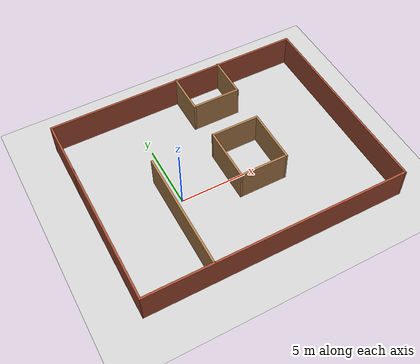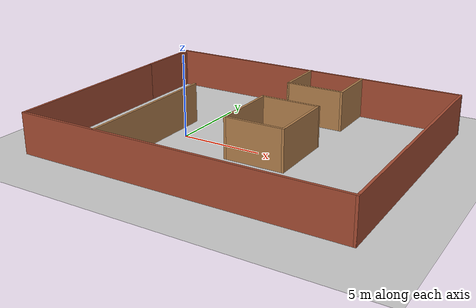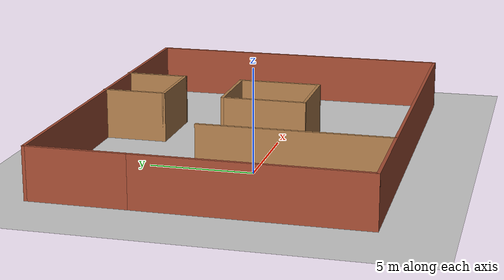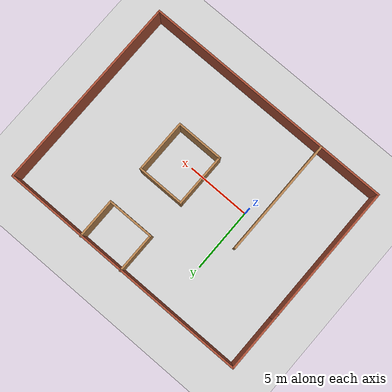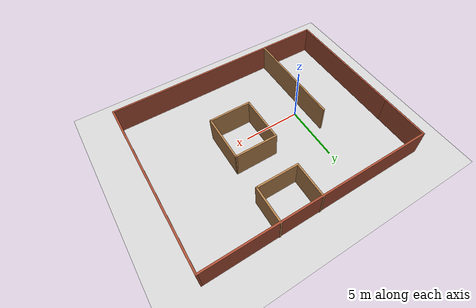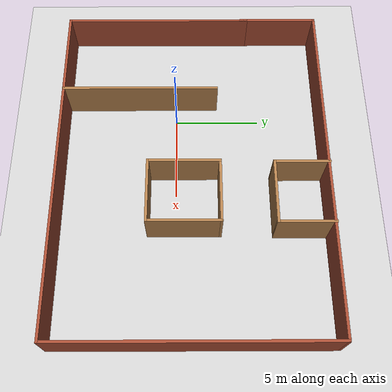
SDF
<sdf version="1.7">
 <world name="default">
  <plugin name="gazebo_ros_state" filename="libgazebo_ros_state.so">
   <ros><namespace>/gazebo</namespace></ros>
   <update_rate>1.0</update_rate>
  </plugin>
  <light name="sun" type="directional">
   <pose>0 0 10 0 -0 0</pose>
   <diffuse>0.8 0.8 0.8 1</diffuse>
   <specular>0.2 0.2 0.2 1</specular>
   <attenuation>
    <range>1000</range>
    <constant>0.9</constant>
    <linear>0.01</linear>
    <quadratic>0.001</quadratic>
   </attenuation>
   <direction>-0.5 0.1 -0.9</direction>
   <spot><inner_angle>0</inner_angle><outer_angle>0</outer_angle><falloff>0</falloff></spot>
  </light>
  <model name="ground_plane">
   <static>1</static>
   <link name="link">
    <collision name="collision">
     <geometry><plane><normal>0 0 1</normal><size>100 100</size></plane></geometry>
     <surface>
      <contact><collide_bitmask>65535</collide_bitmask></contact>
      <friction><ode><mu>100</mu><mu2>50</mu2></ode></friction>
     </surface>
    </collision>
    <visual name="visual">
     <cast_shadows>0</cast_shadows>
     <geometry><plane><normal>0 0 1</normal><size>100 100</size></plane></geometry>
     <material>
      <script><uri>file://media/materials/scripts/gazebo.material</uri><name>Gazebo/Grey</name></script>
     </material>
    </visual>
   </link>
  </model>
  <gravity>0 0 -9.8</gravity>
  <magnetic_field>6e-06 2.3e-05 -4.2e-05</magnetic_field>
  <atmosphere type="adiabatic"/>
  <physics type="ode">
   <max_step_size>0.001</max_step_size>
   <real_time_factor>1</real_time_factor>
   <real_time_update_rate>1000</real_time_update_rate>
  </physics>
  <scene><ambient>0.4 0.4 0.4 1</ambient><background>0.7 0.7 0.7 1</background><shadows>1</shadows></scene>
  <audio><device>default</device></audio>
  <spherical_coordinates>
   <surface_model>EARTH_WGS84</surface_model>
   <latitude_deg>0</latitude_deg>
   <longitude_deg>0</longitude_deg>
   <elevation>0</elevation>
   <heading_deg>0</heading_deg>
  </spherical_coordinates>
  <model name="Social">
   <pose>3.85337 0.98707 0 0 -0 0</pose>
   <link name="Wall_16">
    <collision name="Wall_16_Collision">
     <geometry><box><size>11.25 0.15 2.5</size></box></geometry>
     <pose>0 0 1.25 0 -0 0</pose>
    </collision>
    <visual name="Wall_16_Visual">
     <pose>0 0 1.25 0 -0 0</pose>
     <geometry><box><size>11.25 0.15 2.5</size></box></geometry>
     <material>
      <script><uri>file://media/materials/scripts/gazebo.material</uri><name>Gazebo/Bricks</name></script>
      <ambient>1 1 1 1</ambient>
     </material>
     <meta><layer>0</layer></meta>
    </visual>
    <pose>-9.925 -2.14616 0 0 -0 -1.5708</pose>
   </link>
   <link name="Wall_17">
    <collision name="Wall_17_Collision">
     <geometry><box><size>20 0.15 2.5</size></box></geometry>
     <pose>0 0 1.25 0 -0 0</pose>
    </collision>
    <visual name="Wall_17_Visual">
     <pose>0 0 1.25 0 -0 0</pose>
     <geometry><box><size>20 0.15 2.5</size></box></geometry>
     <material>
      <script><uri>file://media/materials/scripts/gazebo.material</uri><name>Gazebo/Bricks</name></script>
      <ambient>1 1 1 1</ambient>
     </material>
     <meta><layer>0</layer></meta>
    </visual>
    <pose>-0 -7.69616 0 0 -0 0</pose>
   </link>
   <link name="Wall_18">
    <collision name="Wall_18_Collision">
     <geometry><box><size>15.5 0.15 2.5</size></box></geometry>
     <pose>0 0 1.25 0 -0 0</pose>
    </collision>
    <visual name="Wall_18_Visual">
     <pose>0 0 1.25 0 -0 0</pose>
     <geometry><box><size>15.5 0.15 2.5</size></box></geometry>
     <material>
      <script><uri>file://media/materials/scripts/gazebo.material</uri><name>Gazebo/Bricks</name></script>
      <ambient>1 1 1 1</ambient>
     </material>
     <meta><layer>0</layer></meta>
    </visual>
    <pose>9.925 -0.021162 0 0 -0 1.5708</pose>
   </link>
   <link name="Wall_19">
    <collision name="Wall_19_Collision">
     <geometry><box><size>20 0.15 2.5</size></box></geometry>
     <pose>0 0 1.25 0 -0 0</pose>
    </collision>
    <visual name="Wall_19_Visual">
     <pose>0 0 1.25 0 -0 0</pose>
     <geometry><box><size>20 0.15 2.5</size></box></geometry>
     <material>
      <script><uri>file://media/materials/scripts/gazebo.material</uri><name>Gazebo/Bricks</name></script>
      <ambient>1 1 1 1</ambient>
     </material>
     <meta><layer>0</layer></meta>
    </visual>
    <pose>-0 7.65384 0 0 -0 3.14159</pose>
   </link>
   <link name="Wall_20">
    <collision name="Wall_20_Collision">
     <geometry><box><size>4.75 0.15 2.5</size></box></geometry>
     <pose>0 0 1.25 0 -0 0</pose>
    </collision>
    <visual name="Wall_20_Visual">
     <pose>0 0 1.25 0 -0 0</pose>
     <geometry><box><size>4.75 0.15 2.5</size></box></geometry>
     <material>
      <script><uri>file://media/materials/scripts/gazebo.material</uri><name>Gazebo/Bricks</name></script>
      <ambient>1 1 1 1</ambient>
     </material>
     <meta><layer>0</layer></meta>
    </visual>
    <pose>-9.925 5.35384 0 0 -0 -1.5708</pose>
   </link>
   <link name="Wall_22">
    <collision name="Wall_22_Collision">
     <geometry><box><size>9.25 0.15 2.5</size></box></geometry>
     <pose>0 0 1.25 0 -0 0</pose>
    </collision>
    <visual name="Wall_22_Visual">
     <pose>0 0 1.25 0 -0 0</pose>
     <geometry><box><size>9.25 0.15 2.5</size></box></geometry>
     <material>
      <script><uri>file://media/materials/scripts/gazebo.material</uri><name>Gazebo/Wood</name></script>
      <ambient>1 1 1 1</ambient>
     </material>
     <meta><layer>0</layer></meta>
    </visual>
    <pose>-4.85389 -3.11885 0 0 -0 1.5708</pose>
   </link>
   <link name="Wall_28">
    <collision name="Wall_28_Collision">
     <geometry><box><size>3.25 0.15 2.5</size></box></geometry>
     <pose>0 0 1.25 0 -0 0</pose>
    </collision>
    <visual name="Wall_28_Visual">
     <pose>0 0 1.25 0 -0 0</pose>
     <geometry><box><size>3.25 0.15 2.5</size></box></geometry>
     <material>
      <script><uri>file://media/materials/scripts/gazebo.material</uri><name>Gazebo/Wood</name></script>
      <ambient>1 1 1 1</ambient>
     </material>
     <meta><layer>0</layer></meta>
    </visual>
    <pose>0.064983 6.14616 0 0 -0 -1.5708</pose>
   </link>
   <link name="Wall_29">
    <collision name="Wall_29_Collision">
     <geometry><box><size>3.75 0.15 2.5</size></box></geometry>
     <pose>0 0 1.25 0 -0 0</pose>
    </collision>
    <visual name="Wall_29_Visual">
     <pose>0 0 1.25 0 -0 0</pose>
     <geometry><box><size>3.75 0.15 2.5</size></box></geometry>
     <material>
      <script><uri>file://media/materials/scripts/gazebo.material</uri><name>Gazebo/Wood</name></script>
      <ambient>1 1 1 1</ambient>
     </material>
     <meta><layer>0</layer></meta>
    </visual>
    <pose>1.86498 4.59616 0 0 -0 0</pose>
   </link>
   <link name="Wall_30">
    <collision name="Wall_30_Collision">
     <geometry><box><size>3.25 0.15 2.5</size></box></geometry>
     <pose>0 0 1.25 0 -0 0</pose>
    </collision>
    <visual name="Wall_30_Visual">
     <pose>0 0 1.25 0 -0 0</pose>
     <geometry><box><size>3.25 0.15 2.5</size></box></geometry>
     <material>
      <script><uri>file://media/materials/scripts/gazebo.material</uri><name>Gazebo/Wood</name></script>
      <ambient>1 1 1 1</ambient>
     </material>
     <meta><layer>0</layer></meta>
    </visual>
    <pose>3.66498 6.14616 0 0 -0 1.5708</pose>
   </link>
   <link name="Wall_32">
    <collision name="Wall_32_Collision">
     <geometry><box><size>4.25 0.15 2.5</size></box></geometry>
     <pose>0 0 1.25 0 -0 0</pose>
    </collision>
    <visual name="Wall_32_Visual">
     <pose>0 0 1.25 0 -0 0</pose>
     <geometry><box><size>4.25 0.15 2.5</size></box></geometry>
     <material>
      <script><uri>file://media/materials/scripts/gazebo.material</uri><name>Gazebo/Wood</name></script>
      <ambient>1 1 1 1</ambient>
     </material>
     <meta><layer>0</layer></meta>
    </visual>
    <pose>-0.015928 -0.503085 0 0 -0 -1.5708</pose>
   </link>
   <link name="Wall_35">
    <collision name="Wall_35_Collision">
     <geometry><box><size>3.75 0.15 2.5</size></box></geometry>
     <pose>0 0 1.25 0 -0 0</pose>
    </collision>
    <visual name="Wall_35_Visual">
     <pose>0 0 1.25 0 -0 0</pose>
     <geometry><box><size>3.75 0.15 2.5</size></box></geometry>
     <material>
      <script><uri>file://media/materials/scripts/gazebo.material</uri><name>Gazebo/Wood</name></script>
      <ambient>1 1 1 1</ambient>
     </material>
     <meta><layer>0</layer></meta>
    </visual>
    <pose>1.78407 -2.55308 0 0 -0 0</pose>
   </link>
   <link name="Wall_36">
    <collision name="Wall_36_Collision">
     <geometry><box><size>4.25 0.15 2.5</size></box></geometry>
     <pose>0 0 1.25 0 -0 0</pose>
    </collision>
    <visual name="Wall_36_Visual">
     <pose>0 0 1.25 0 -0 0</pose>
     <geometry><box><size>4.25 0.15 2.5</size></box></geometry>
     <material>
      <script><uri>file://media/materials/scripts/gazebo.material</uri><name>Gazebo/Wood</name></script>
      <ambient>1 1 1 1</ambient>
     </material>
     <meta><layer>0</layer></meta>
    </visual>
    <pose>3.58407 -0.503085 0 0 -0 1.5708</pose>
   </link>
   <link name="Wall_37">
    <collision name="Wall_37_Collision">
     <geometry><box><size>3.75 0.15 2.5</size></box></geometry>
     <pose>0 0 1.25 0 -0 0</pose>
    </collision>
    <visual name="Wall_37_Visual">
     <pose>0 0 1.25 0 -0 0</pose>
     <geometry><box><size>3.75 0.15 2.5</size></box></geometry>
     <material>
      <script><uri>file://media/materials/scripts/gazebo.material</uri><name>Gazebo/Wood</name></script>
      <ambient>1 1 1 1</ambient>
     </material>
     <meta><layer>0</layer></meta>
    </visual>
    <pose>1.78407 1.54692 0 0 -0 3.14159</pose>
   </link>
   <static>1</static>
  </model>
  <light name="user_directional_light_0" type="directional">
   <pose>5.68922 0.836417 1 0 -0 0</pose>
   <diffuse>0.5 0.5 0.5 1</diffuse>
   <specular>0.1 0.1 0.1 1</specular>
   <direction>0.1 0.1 -0.9</direction>
   <attenuation>
    <range>20</range>
    <constant>0.5</constant>
    <linear>0.01</linear>
    <quadratic>0.001</quadratic>
   </attenuation>
  </light>
 </world>
</sdf>
